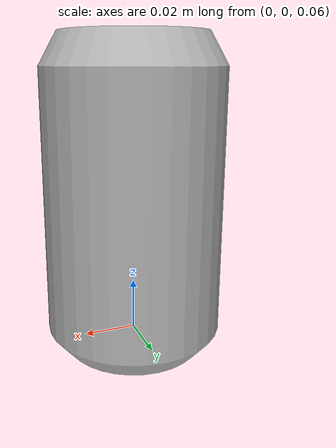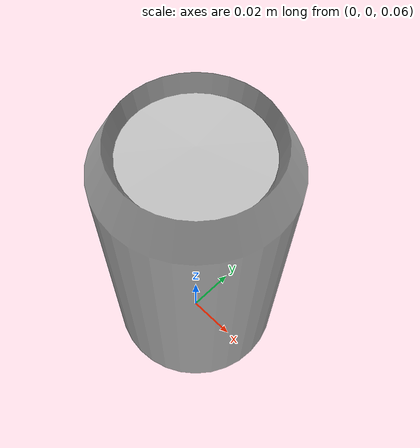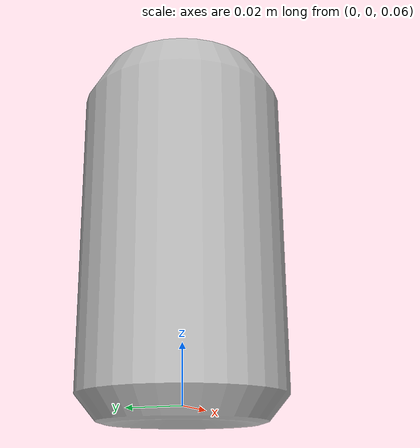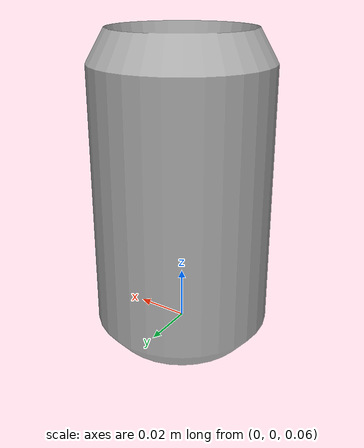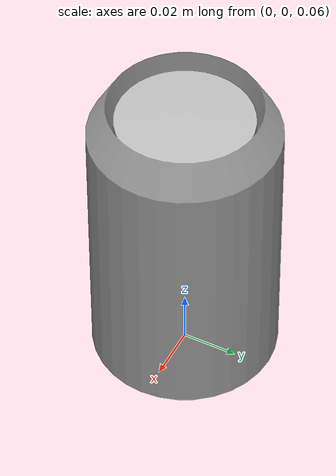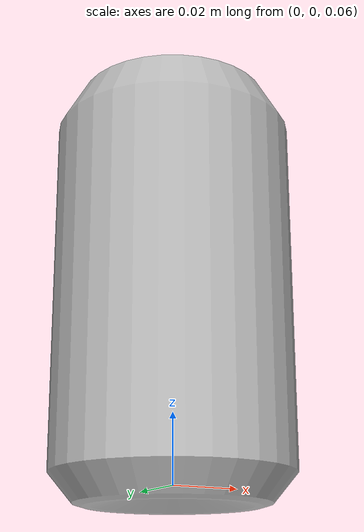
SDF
<?xml version="1.0" ?>
<sdf version="1.5">
  <model name="coca_cola">
    <link name="link">
	 <pose>0 0 0.115 0 0 0</pose>
      <inertial>
        <mass>0.390</mass>
        <inertia>
          <ixx>0.00058</ixx>
          <ixy>0</ixy>
          <ixz>0</ixz>
          <iyy>0.00058</iyy>
          <iyz>0</iyz>
          <izz>0.00019</izz>
        </inertia>
      </inertial>
      <collision name="collision">
        <geometry>
          <cylinder>
            <radius>0.0301625</radius>
            <length>0.12065</length>
          </cylinder>
        </geometry>
      </collision>
	<visual name="bodyMesh">
	<geometry>
	  <mesh>
	    <uri>model://coca_cola/meshes/coke.dae</uri>
	  	<scale>1 1 1</scale>
	  </mesh>
	  </geometry>
	</visual>
    </link>
 </model>
</sdf>
